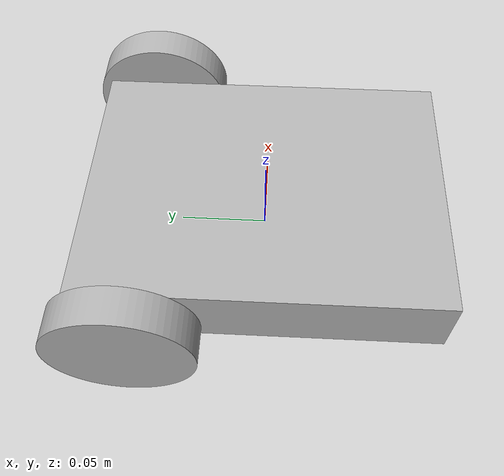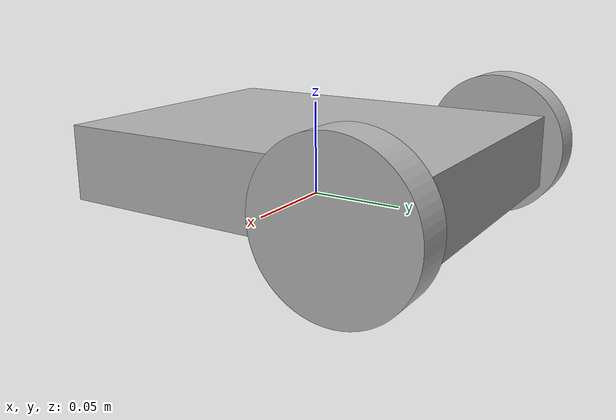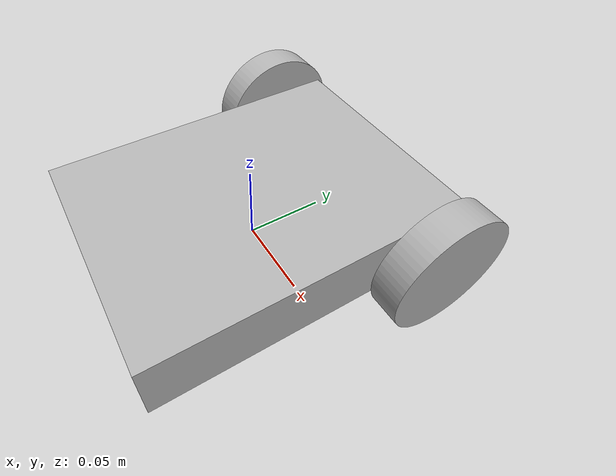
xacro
<?xml version="1.0" ?>
<robot name="mobile" xmlns:xacro="http://www.ros.org/wiki/xacro">

<xacro:include filename="$(find first_urdf)/urdf/materials.xacro" />
<xacro:include filename="$(find first_urdf)/urdf/mobile.trans" />
<xacro:include filename="$(find first_urdf)/urdf/mobile.gazebo" />
<link name="base_link">
  <inertial>
    <origin xyz="5.474970520392453e-15 -0.000301736895621843 0.01987626616510473" rpy="0 0 0"/>
    <mass value="9.467267879467137"/>
    <inertia ixx="0.032984" iyy="0.018991" izz="0.049394" ixy="0.0" iyz="-9.3e-05" ixz="0.0"/>
  </inertial>
  <visual>
    <origin xyz="0 0 0" rpy="0 0 0"/>
    <geometry>
      <mesh filename="file://$(find first_urdf)/meshes/base_link.stl" scale="0.001 0.001 0.001"/>
    </geometry>
    <material name="silver"/>
  </visual>
  <collision>
    <origin xyz="0 0 0" rpy="0 0 0"/>
    <geometry>
      <mesh filename="file://$(find first_urdf)/meshes/base_link.stl" scale="0.001 0.001 0.001"/>
    </geometry>
  </collision>
</link>

<link name="left_wheel_1">
  <inertial>
    <origin xyz="0.009999999999999995 0.0 -6.938893903907228e-18" rpy="0 0 0"/>
    <mass value="0.789168074581756"/>
    <inertia ixx="0.000631" iyy="0.000342" izz="0.000342" ixy="0.0" iyz="0.0" ixz="-0.0"/>
  </inertial>
  <visual>
    <origin xyz="-0.08 -0.07 -0.02" rpy="0 0 0"/>
    <geometry>
      <mesh filename="file://$(find first_urdf)/meshes/left_wheel_1.stl" scale="0.001 0.001 0.001"/>
    </geometry>
    <material name="silver"/>
  </visual>
  <collision>
    <origin xyz="-0.08 -0.07 -0.02" rpy="0 0 0"/>
    <geometry>
      <mesh filename="file://$(find first_urdf)/meshes/left_wheel_1.stl" scale="0.001 0.001 0.001"/>
    </geometry>
  </collision>
</link>

<link name="right_wheel_1">
  <inertial>
    <origin xyz="-0.009999999999999995 0.0 -6.938893903907228e-18" rpy="0 0 0"/>
    <mass value="0.789168074581756"/>
    <inertia ixx="0.000631" iyy="0.000342" izz="0.000342" ixy="0.0" iyz="0.0" ixz="0.0"/>
  </inertial>
  <visual>
    <origin xyz="0.08 -0.07 -0.02" rpy="0 0 0"/>
    <geometry>
      <mesh filename="file://$(find first_urdf)/meshes/right_wheel_1.stl" scale="0.001 0.001 0.001"/>
    </geometry>
    <material name="silver"/>
  </visual>
  <collision>
    <origin xyz="0.08 -0.07 -0.02" rpy="0 0 0"/>
    <geometry>
      <mesh filename="file://$(find first_urdf)/meshes/right_wheel_1.stl" scale="0.001 0.001 0.001"/>
    </geometry>
  </collision>
</link>

<joint name="Revolute 1" type="continuous">
  <origin xyz="0.08 0.07 0.02" rpy="0 0 0"/>
  <parent link="base_link"/>
  <child link="left_wheel_1"/>
  <axis xyz="1.0 0.0 0.0"/>
</joint>

<joint name="Revolute 2" type="continuous">
  <origin xyz="-0.08 0.07 0.02" rpy="0 0 0"/>
  <parent link="base_link"/>
  <child link="right_wheel_1"/>
  <axis xyz="-1.0 0.0 0.0"/>
</joint>

</robot>

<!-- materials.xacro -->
<robot name="mobile" xmlns:xacro="http://www.ros.org/wiki/xacro" >

<material name="silver">
  <color rgba="0.700 0.700 0.700 1.000"/>
</material>

</robot>

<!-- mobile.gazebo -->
<robot name="mobile" xmlns:xacro="http://www.ros.org/wiki/xacro" >

<xacro:property name="body_color" value="Gazebo/Silver" />

<gazebo>
  <plugin name="control" filename="libgazebo_ros_control.so"/>
</gazebo>
<gazebo reference="base_link">
  <material>${body_color}</material>
  <mu1>0.2</mu1>
  <mu2>0.2</mu2>
  <self_collide>true</self_collide>
  <gravity>true</gravity>
</gazebo>

<gazebo reference="left_wheel_1">
  <material>${body_color}</material>
  <mu1>0.2</mu1>
  <mu2>0.2</mu2>
  <self_collide>true</self_collide>
</gazebo>

<gazebo reference="right_wheel_1">
  <material>${body_color}</material>
  <mu1>0.2</mu1>
  <mu2>0.2</mu2>
  <self_collide>true</self_collide>
</gazebo>

</robot>
